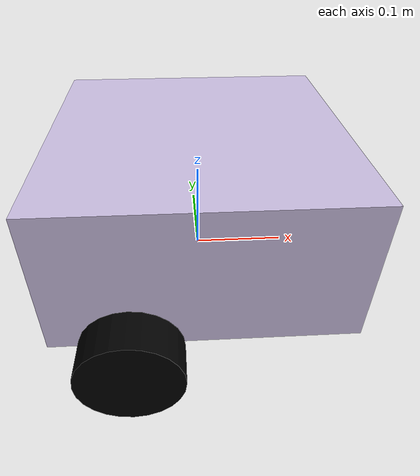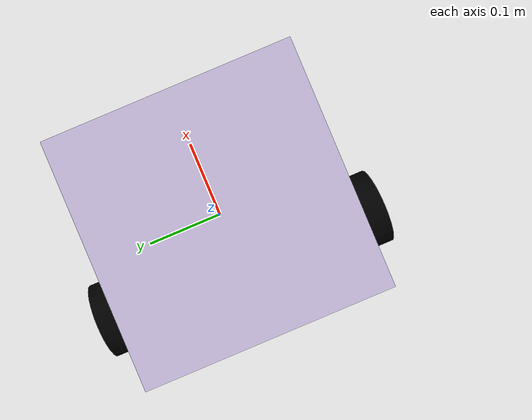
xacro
<?xml version="1.0"?>
<robot xmlns:xacro="http://www.ros.org/wiki/xacro">

   <xacro:include filename="inertial_macros.xacro" />

   <link name="base_link" />

   <!-- Chassis -->
   <joint name="chassis_joint" type="fixed">
     <origin xyz="0 0 0" rpy="0 0 0"/>
     <parent link="base_link"/>
     <child link="chassis_link"/>
   </joint>

   <link name="chassis_link">
      <visual>
         <origin xyz="0 0 0.075"/>
         <geometry>
            <box size="0.3 0.3 0.15"/>
         </geometry>
         <material name="chassis_material">
            <color rgba="0.82 0.77 0.91 1.0"/>
         </material>
      </visual>
      <collision>
         <origin xyz="0 0 0.075"/>
         <geometry>
            <box size="0.3 0.3 0.15"/>
         </geometry>
      </collision>
      <xacro:inertial_box mass="0.5" x="0.3" y="0.3" z="0.15">
         <origin xyz="0 0 0.075" rpy="0 0 0"/>
      </xacro:inertial_box>
   </link>

   <!-- Left wheel -->
   <joint name="left_wheel_joint" type="continuous">
     <origin xyz="-0.07 0.175 0" rpy="-${pi/2} 0 0"/>
     <parent link="base_link"/>
     <child link="left_wheel_link"/>
     <axis xyz="0 0 1"/>
   </joint>

   <link name="left_wheel_link">
      <visual>
         <geometry>
            <cylinder radius="0.05" length="0.04"/>
         </geometry>
         <material name="wheel_material">
            <color rgba="0.0 0.0 0.0 1.0"/>
         </material>
      </visual>
      <collision>
         <geometry>
            <cylinder radius="0.05" length="0.04"/>
         </geometry>
      </collision>
      <xacro:inertial_cylinder mass="0.1" length="0.04" radius="0.05">
         <origin xyz="0 0 0" rpy="0 0 0"/>
      </xacro:inertial_cylinder>
   </link>

   <!-- Right wheel -->
   <joint name="right_wheel_joint" type="continuous">
     <origin xyz="-0.07 -0.175 0" rpy="-${pi/2} 0 0"/>
     <parent link="base_link"/>
     <child link="right_wheel_link"/>
     <axis xyz="0 0 1"/>
   </joint>

   <link name="right_wheel_link">
      <visual>
         <geometry>
            <cylinder radius="0.05" length="0.04"/>
         </geometry>
         <material name="wheel_material">
            <color rgba="0.0 0.0 0.0 1.0"/>
         </material>
      </visual>
      <collision>
         <geometry>
            <cylinder radius="0.05" length="0.04"/>
         </geometry>
      </collision>
      <xacro:inertial_cylinder mass="0.1" length="0.04" radius="0.05">
         <origin xyz="0 0 0" rpy="0 0 0"/>
      </xacro:inertial_cylinder>
   </link>

   <!-- Castor wheel -->
   <joint name="castor_wheel_joint" type="fixed">
      <parent link="base_link"/>
      <child link="castor_wheel"/>
      <origin xyz="0.09 0 0"/>
   </joint>

   <link name="castor_wheel">
      <visual>
         <geometry>
            <sphere radius="0.05"/>
         </geometry>
         <material name="castor_material">
               <color rgba="0.62 0.62 0.62 1.0"/>
         </material>
      </visual>
      <collision>
         <geometry>
            <sphere radius="0.05"/>
         </geometry>
      </collision>
      <xacro:inertial_sphere mass="0.1" radius="0.05">
         <origin xyz="0 0 0" rpy="0 0 0"/>
      </xacro:inertial_sphere>
   </link>

</robot>
